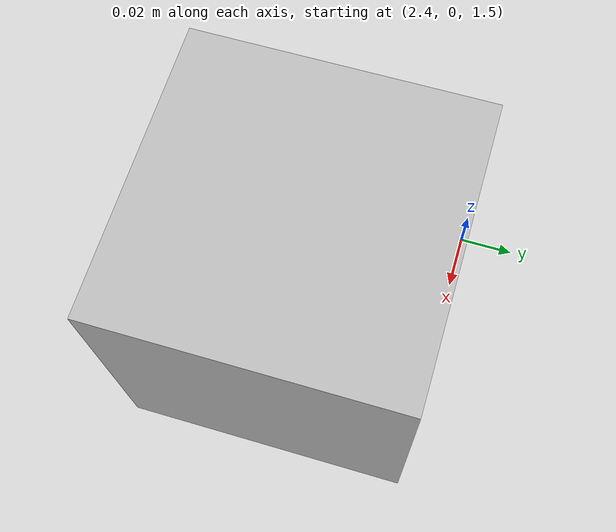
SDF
<?xml version="1.0" ?>
<sdf version="1.11">
  <world name="default">
    <plugin
      filename="gz-sim-sensors-system"
      name="gz::sim::systems::Sensors">
      <render_engine>ogre2</render_engine>
    </plugin>

    <plugin
      filename="gz-sim-nasa-pds-dtm-importer-system"
      name="gz::sim::systems::NasaPdsDtmImporter">
      <terrain_name>gale_crater</terrain_name>
      <dtm_pds_url>https://www.uahirise.org/PDS/DTM/ESP/ORB_017600_017699/ESP_017633_2250_ESP_017132_2250/DTEED_017633_2250_017132_2250_U01.IMG</dtm_pds_url>

      <raster_x_size_limit>100</raster_x_size_limit>
      <raster_y_size_limit>50</raster_y_size_limit>

      <equatorial_axis_radius>3396190.0</equatorial_axis_radius>
      <polar_axis_radius>3376200.0</polar_axis_radius>

      <use_color>false</use_color>
      <terrain_color>3 3 3</terrain_color>
    </plugin>

    <plugin
      filename="gz-sim-scene-broadcaster-system"
      name="gz::sim::systems::SceneBroadcaster">
    </plugin>

    <gui fullscreen="0">

      <!-- 3D scene -->
      <plugin filename="MinimalScene" name="3D View">
        <gz-gui>
          <title>3D View</title>
          <property type="bool" key="showTitleBar">false</property>
          <property type="string" key="state">docked</property>
        </gz-gui>

        <engine>ogre2</engine>
        <scene>scene</scene>
        <ambient_light>0.4 0.4 0.4</ambient_light>
        <background_color>0.8 0.8 0.8</background_color>
        <camera_pose>-6 0 6 0 0.5 0</camera_pose>
      </plugin>

      <!-- Plugins that add functionality to the scene -->
      <plugin filename="EntityContextMenuPlugin" name="Entity context menu">
        <gz-gui>
          <property key="state" type="string">floating</property>
          <property key="width" type="double">5</property>
          <property key="height" type="double">5</property>
          <property key="showTitleBar" type="bool">false</property>
        </gz-gui>
      </plugin>
      <plugin filename="GzSceneManager" name="Scene Manager">
        <gz-gui>
          <property key="resizable" type="bool">false</property>
          <property key="width" type="double">5</property>
          <property key="height" type="double">5</property>
          <property key="state" type="string">floating</property>
          <property key="showTitleBar" type="bool">false</property>
        </gz-gui>
      </plugin>
      <plugin filename="InteractiveViewControl" name="Interactive view control">
        <gz-gui>
          <property key="resizable" type="bool">false</property>
          <property key="width" type="double">5</property>
          <property key="height" type="double">5</property>
          <property key="state" type="string">floating</property>
          <property key="showTitleBar" type="bool">false</property>
        </gz-gui>
      </plugin>
      <plugin filename="SelectEntities" name="Select Entities">
        <gz-gui>
          <anchors target="Select entities">
            <line own="right" target="right"/>
            <line own="top" target="top"/>
          </anchors>
          <property key="resizable" type="bool">false</property>
          <property key="width" type="double">5</property>
          <property key="height" type="double">5</property>
          <property key="state" type="string">floating</property>
          <property key="showTitleBar" type="bool">false</property>
        </gz-gui>
      </plugin>

      <!-- World control -->
      <plugin filename="WorldControl" name="World control">
        <gz-gui>
          <title>World control</title>
          <property type="bool" key="showTitleBar">false</property>
          <property type="bool" key="resizable">false</property>
          <property type="double" key="height">72</property>
          <property type="double" key="z">1</property>

          <property type="string" key="state">floating</property>
          <anchors target="3D View">
            <line own="left" target="left"/>
            <line own="bottom" target="bottom"/>
          </anchors>
        </gz-gui>

        <play_pause>true</play_pause>
        <step>true</step>
        <start_paused>true</start_paused>
        <use_event>true</use_event>

      </plugin>

      <!-- World statistics -->
      <plugin filename="WorldStats" name="World stats">
        <gz-gui>
          <title>World stats</title>
          <property type="bool" key="showTitleBar">false</property>
          <property type="bool" key="resizable">false</property>
          <property type="double" key="height">110</property>
          <property type="double" key="width">290</property>
          <property type="double" key="z">1</property>

          <property type="string" key="state">floating</property>
          <anchors target="3D View">
            <line own="right" target="right"/>
            <line own="bottom" target="bottom"/>
          </anchors>
        </gz-gui>

        <sim_time>true</sim_time>
        <real_time>true</real_time>
        <real_time_factor>true</real_time_factor>
        <iterations>true</iterations>
      </plugin>

    <!-- Insert simple shapes -->
    <plugin filename="Shapes" name="Shapes">
        <gz-gui>
            <property key="resizable" type="bool">false</property>
            <property key="x" type="double">0</property>
            <property key="y" type="double">0</property>
            <property key="width" type="double">250</property>
            <property key="height" type="double">50</property>
            <property key="state" type="string">floating</property>
            <property key="showTitleBar" type="bool">false</property>
            <property key="cardBackground" type="string">#666666</property>
        </gz-gui>
    </plugin>

    <!-- Insert lights -->
    <plugin filename="Lights" name="Lights">
        <gz-gui>
            <property key="resizable" type="bool">false</property>
            <property key="x" type="double">250</property>
            <property key="y" type="double">0</property>
            <property key="width" type="double">150</property>
            <property key="height" type="double">50</property>
            <property key="state" type="string">floating</property>
            <property key="showTitleBar" type="bool">false</property>
            <property key="cardBackground" type="string">#666666</property>
        </gz-gui>
    </plugin>

    <!-- Translate / rotate -->
    <plugin filename="TransformControl" name="Transform control">
        <gz-gui>
            <property key="resizable" type="bool">false</property>
            <property key="x" type="double">0</property>
            <property key="y" type="double">50</property>
            <property key="width" type="double">250</property>
            <property key="height" type="double">50</property>
            <property key="state" type="string">floating</property>
            <property key="showTitleBar" type="bool">false</property>
            <property key="cardBackground" type="string">#777777</property>
        </gz-gui>
    </plugin>

    <!-- Inspector -->
    <plugin filename="ComponentInspector" name="Component inspector">
        <gz-gui>
            <property type="bool" key="showTitleBar">false</property>
            <property type="string" key="state">docked</property>
        </gz-gui>
    </plugin>

    <!-- Entity tree -->
    <plugin filename="EntityTree" name="Entity tree">
        <gz-gui>
            <property type="bool" key="showTitleBar">false</property>
            <property type="string" key="state">docked</property>
        </gz-gui>
    </plugin>
  </gui>

  <light type="directional" name="sun">
    <cast_shadows>true</cast_shadows>
    <pose>0 0 10 0 0 0</pose>
    <diffuse>0.8 0.8 0.8 1</diffuse>
    <specular>0.2 0.2 0.2 1</specular>
    <attenuation>
      <range>1000</range>
      <constant>0.9</constant>
      <linear>0.01</linear>
      <quadratic>0.001</quadratic>
    </attenuation>
    <direction>-0.5 0.1 -0.9</direction>
  </light>

    <model name="camera_model">
      <pose>2.5 0 1.5 0 0.0 3.14</pose>
      <link name="link">
        <pose>0.05 0.05 0.05 0 0 0</pose>
        <inertial>
          <mass>0.1</mass>
          <inertia>
            <ixx>0.000166667</ixx>
            <iyy>0.000166667</iyy>
            <izz>0.000166667</izz>
          </inertia>
        </inertial>
        <collision name="collision">
          <geometry>
            <box>
              <size>0.1 0.1 0.1</size>
            </box>
          </geometry>
        </collision>
        <visual name="visual">
          <geometry>
            <box>
              <size>0.1 0.1 0.1</size>
            </box>
          </geometry>
        </visual>
        <sensor name="camera" type="camera">
          <camera>
            <horizontal_fov>1.047</horizontal_fov>
            <image>
              <width>320</width>
              <height>240</height>
            </image>
            <clip>
              <near>0.1</near>
              <far>100</far>
            </clip>
          </camera>
          <always_on>1</always_on>
          <update_rate>30</update_rate>
          <visualize>true</visualize>
          <topic>camera</topic>
        </sensor>
      </link>
      <static>true</static>
    </model>

  </world>
</sdf>
